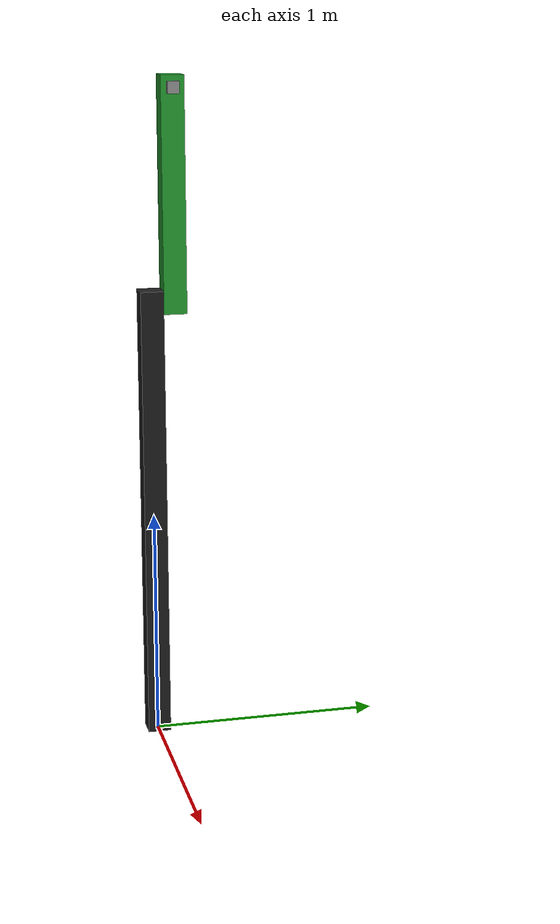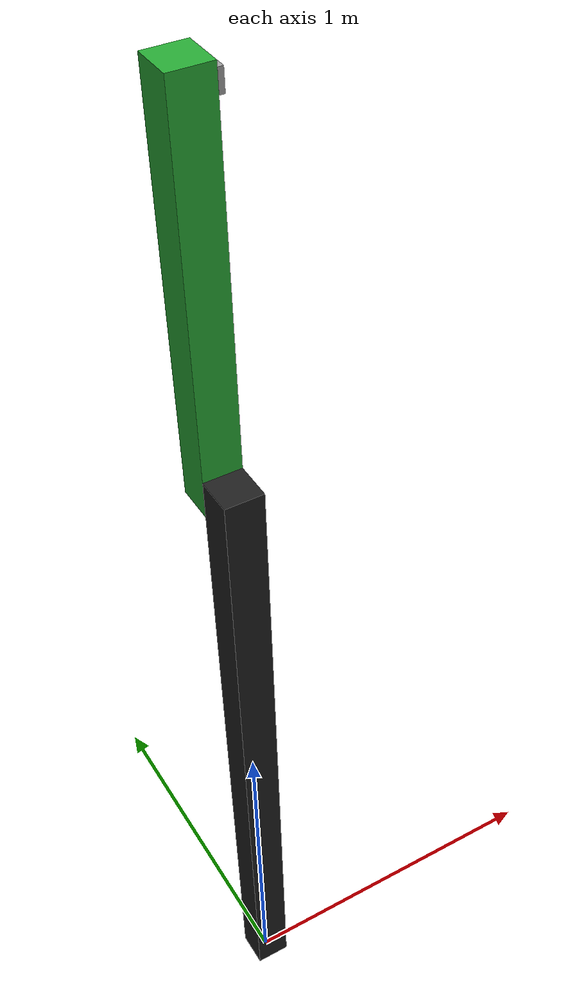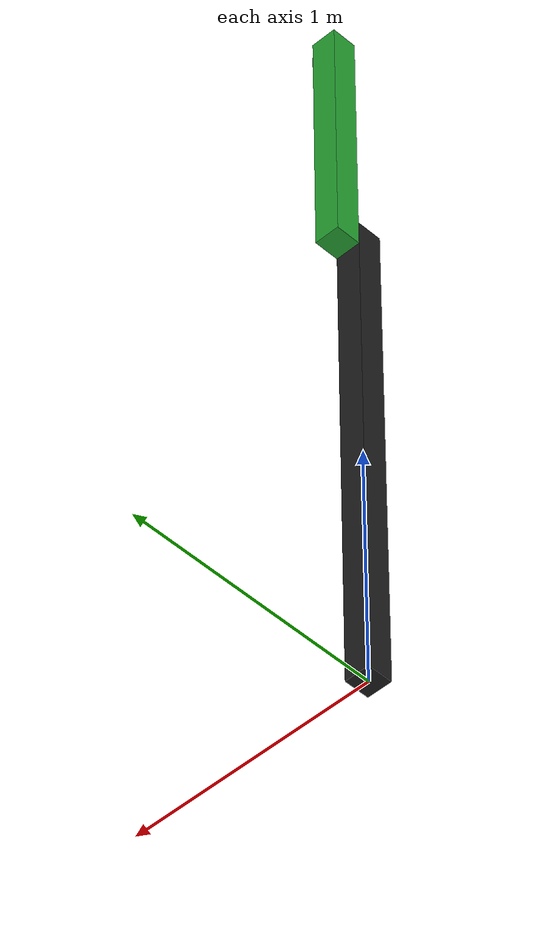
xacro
<?xml version="1.0"?>
<robot name="acrobat" xmlns:xacro="http://www.ros.org/wiki/xacro">

  <!-- acrobat robot -->
  <xacro:include filename="$(find acrobat_description)/urdf/acrobat_robot.urdf.xacro" />

  <!-- custom acrobat plugin to actuate joint -->
  <gazebo>
    <plugin name="acrobat_plugin" filename="libacrobat_plugin.so" >
        <jointName>joint1</jointName>
    </plugin>
  </gazebo>

  <!-- gazebo link colors and acrobat camera plugin -->
  <xacro:include filename="$(find acrobat_description)/urdf/acrobat_gazebo.urdf.xacro" />

</robot>

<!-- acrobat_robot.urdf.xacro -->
<!-- Revolute 1 joint manipulator -->
<robot name="acrobat" xmlns:xacro="http://www.ros.org/wiki/xacro">

  <!-- Constants for robot dimensions -->
  <xacro:property name="PI" value="3.1415926535897931"/>
  <xacro:property name="mass" value="1" /> <!-- arbitrary value for mass -->
  <xacro:property name="width" value="0.1" /> <!-- Square dimensions (widthxwidth) of beams -->
  <xacro:property name="height1" value="2" /> <!-- Link 1 -->
  <xacro:property name="height2" value="1" /> <!-- Link 2 -->
  <xacro:property name="camera_link" value="0.05" /> <!-- Size of square 'camera' box -->
  <xacro:property name="axel_offset" value="0.05" /> <!-- Space btw top of beam and the each joint -->

  <!-- Import Rviz colors -->
  <xacro:include filename="$(find acrobat_description)/urdf/materials.urdf.xacro" />

  <!-- Used for fixing robot to Gazebo 'base_link' -->
  <link name="world"/>

  <joint name="fixed" type="fixed">
    <parent link="world"/>
    <child link="link1"/>
  </joint>

  <!-- Base Link -->
  <link name="link1">
    <collision>
      <origin xyz="0 0 ${height1/2}" rpy="0 0 0"/>
      <geometry>
        <box size="${width} ${width} ${height1}"/>
      </geometry>
    </collision>

    <visual>
      <origin xyz="0 0 ${height1/2}" rpy="0 0 0"/>
      <geometry>
        <box size="${width} ${width} ${height1}"/>
      </geometry>
      <material name="black"/>
    </visual>

    <inertial>
      <origin xyz="0 0 ${height1/2}" rpy="0 0 0"/>
      <mass value="${mass}"/>
      <inertia
          ixx="${mass / 12.0 * (width*width + height1*height1)}" ixy="0.0" ixz="0.0"
          iyy="${mass / 12.0 * (height1*height1 + width*width)}" iyz="0.0"
          izz="${mass / 12.0 * (width*width + width*width)}"/>
    </inertial>
  </link>

  <joint name="joint1" type="continuous">
    <parent link="link1"/>
    <child link="link2"/>
    <origin xyz="0 ${width} ${height1 - axel_offset}" rpy="0 0 0"/>
    <axis xyz="0 1 0"/>
    <dynamics damping="0.7"/>
  </joint>

  <!-- Acrobat green link -->
  <link name="link2">
    <collision>
      <origin xyz="0 0 ${height2/2 - axel_offset}" rpy="0 0 0"/>
      <geometry>
        <box size="${width} ${width} ${height2}"/>
      </geometry>
    </collision>

    <visual>
      <origin xyz="0 0 ${height2/2 - axel_offset}" rpy="0 0 0"/>
      <geometry>
        <box size="${width} ${width} ${height2}"/>
      </geometry>
      <material name="green"/>
    </visual>

    <inertial>
      <origin xyz="0 0 ${height2/2 - axel_offset}" rpy="0 0 0"/>
      <mass value="${mass}"/>
      <inertia
          ixx="${mass / 12.0 * (width*width + height2*height2)}" ixy="0.0" ixz="0.0"
          iyy="${mass / 12.0 * (height2*height2 + width*width)}" iyz="0.0"
          izz="${mass / 12.0 * (width*width + width*width)}"/>
    </inertial>
  </link>

  <joint name="camera_joint" type="fixed">
    <axis xyz="0 1 0" />
    <origin xyz="${camera_link} 0 ${height2 - axel_offset*2}" rpy="0 0 0"/>
    <parent link="link2"/>
    <child link="camera_link"/>
  </joint>

  <!-- dummy link to get a tf at the end of link2 -->
  <link name="link3" />

  <!-- dummy fixed joint to get a tf at the end of link2 (for reward calculation purposes -> learning stuff) -->
  <joint name="link3_joint" type="fixed">
    <axis xyz="0 0 1" />
    <origin xyz="0 0 ${height2}" rpy="0 0 0"/>
    <parent link="link2"/>
    <child link="link3"/>
  </joint>

  <!-- if link3 matches exactly with this one, then reward of the acrobat is maximum -->
  <link name="goal_link" />

  <joint name="goal_link_joint" type="fixed">
    <axis xyz="0 0 1" />
    <origin xyz="0 ${width} ${height1 + height2 - axel_offset}" rpy="0 0 0"/>
    <parent link="link1"/>
    <child link="goal_link"/>
  </joint>

  <!-- Camera -->
  <link name="camera_link">
    <collision>
      <origin xyz="0 0 0" rpy="0 0 0"/>
      <geometry>
        <box size="${camera_link} ${camera_link} ${camera_link}"/>
      </geometry>
    </collision>

    <visual>
      <origin xyz="0 0 0" rpy="0 0 0"/>
      <geometry>
        <box size="${camera_link} ${camera_link} ${camera_link}"/>
      </geometry>
      <material name="grey"/>
    </visual>

    <inertial>
      <mass value="1e-5" />
      <origin xyz="0 0 0" rpy="0 0 0"/>
      <inertia ixx="1e-6" ixy="0" ixz="0" iyy="1e-6" iyz="0" izz="1e-6" />
    </inertial>
  </link>

  <!-- generate an optical frame http://www.ros.org/reps/rep-0103.html#suffix-frames
      so that ros and opencv can operate on the camera frame correctly -->
  <joint name="camera_optical_joint" type="fixed">
    <!-- these values have to be these values otherwise the gazebo camera image
        won't be aligned properly with the frame it is supposedly originating from -->
    <origin xyz="0 0 0" rpy="${-pi/2} 0 ${-pi/2}"/>
    <parent link="camera_link"/>
    <child link="camera_link_optical"/>
  </joint>

  <link name="camera_link_optical">
  </link>

  <transmission name="tran1">
    <type>transmission_interface/SimpleTransmission</type>
    <joint name="joint1">
      <hardwareInterface>hardware_interface/EffortJointInterface</hardwareInterface>
    </joint>
    <actuator name="motor1">
      <hardwareInterface>hardware_interface/EffortJointInterface</hardwareInterface>
      <mechanicalReduction>1</mechanicalReduction>
    </actuator>
  </transmission>

</robot>
